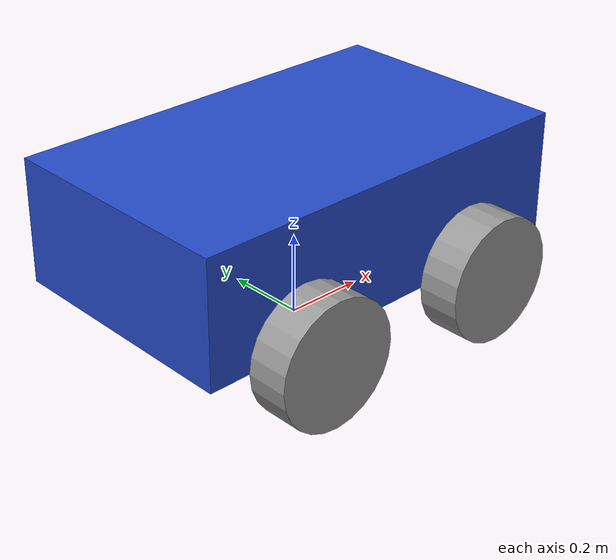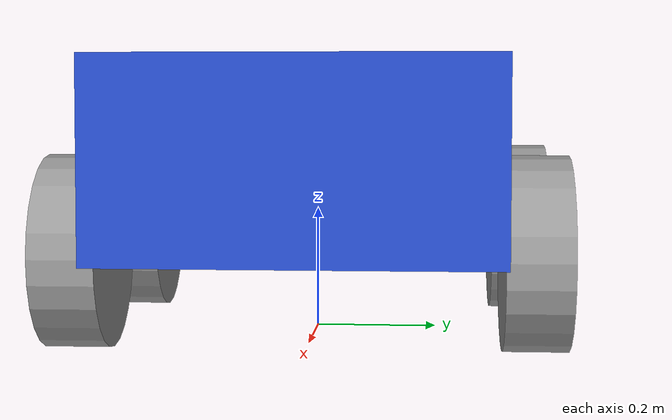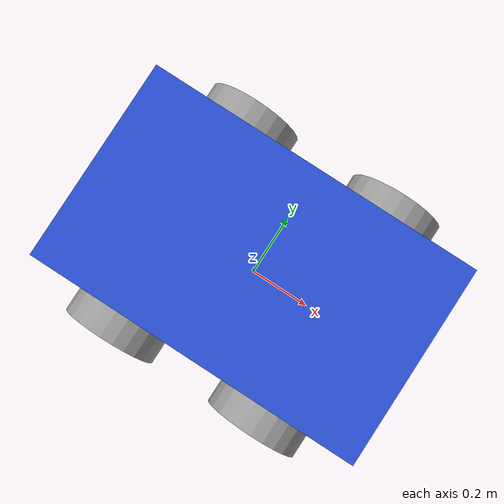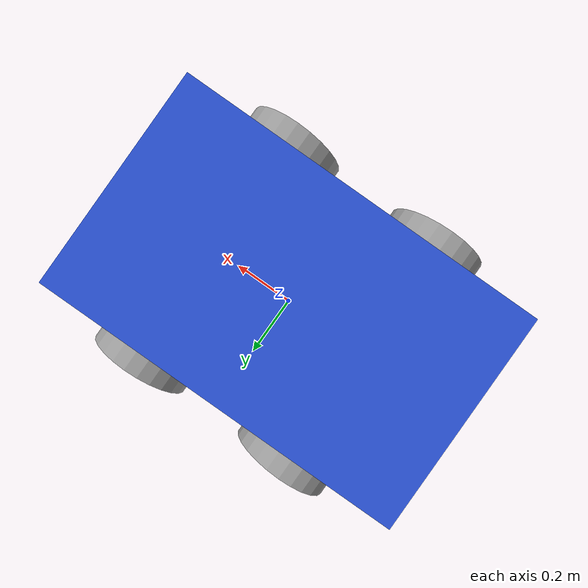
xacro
<?xml version="1.0"?>
<robot xmlns:xacro="http://www.ros.org/wiki/xacro">

    <xacro:property name="base_length" value="1" />
    <xacro:property name="base_width" value="0.6" />
    <xacro:property name="base_height" value="0.3" />
    <xacro:property name="wheel_radius" value="0.15" />
    <xacro:property name="wheel_length" value="0.1" />

    <link name="base_footprint" />

    <link name="base_link">
        <visual>
            <geometry>
                <box size="${base_length} ${base_width} ${base_height}" />
            </geometry>
            <origin xyz="0 0 ${base_height / 2.0}" rpy="0 0 0" />
            <material name="blue" />
        </visual>
        <collision>
            <geometry>
                <box size="${base_length} ${base_width} ${base_height}" />
            </geometry>
            <origin xyz="0 0 ${base_height / 2.0}" rpy="0 0 0" />
        </collision>
        <xacro:box_inertia m="5.0" l="${2*base_length}" w="${2*base_width}" h="${2*base_height}" xyz="0 0 ${base_height / 2.0}" rpy="0 0 0" />
    </link>

    <xacro:macro name="wheel_link" params="prefix">
        <link name="${prefix}_wheel_link">
            <visual>
                <geometry>
                    <cylinder radius="${wheel_radius}" length="${wheel_length}" />
                </geometry>
                <origin xyz="0 0 0" rpy="${pi / 2.0} 0 0" />
                <material name="grey" />
            </visual>
            <collision>
                <geometry>
                    <cylinder radius="${wheel_radius}" length="${wheel_length}" />
                </geometry>
                <origin xyz="0 0 0" rpy="${pi / 2.0} 0 0" />
            </collision>
            <xacro:cylinder_inertia m="1.0" r="${2*wheel_radius}" h="${2*wheel_length}" xyz="0 0 0" rpy="${pi / 2.0} 0 0"/>
        </link>
    </xacro:macro>

    <!-- Front wheels -->
    <xacro:wheel_link prefix="right" />
    <xacro:wheel_link prefix="left" />

    <!-- Back wheels -->
    <xacro:wheel_link prefix="right_back" />
    <xacro:wheel_link prefix="left_back" />

    <!-- Joints -->
    <joint name="base_joint" type="fixed">
        <parent link="base_footprint" />
        <child link="base_link" />
        <origin xyz="0 0 ${wheel_radius}" rpy="0 0 0"/>
    </joint>

    <joint name="base_right_wheel_joint" type="continuous">
        <parent link="base_link" />
        <child link="right_wheel_link" />
        <origin xyz="${-base_length / 4.0} ${-(base_width + wheel_length) / 2.0} 0" rpy="0 0 0" />
        <axis xyz="0 1 0" />
    </joint>

    <joint name="base_left_wheel_joint" type="continuous">
        <parent link="base_link" />
        <child link="left_wheel_link" />
        <origin xyz="${-base_length / 4.0} ${(base_width + wheel_length) / 2.0} 0" rpy="0 0 0" />
        <axis xyz="0 1 0" />
    </joint>

    <joint name="base_back_right_wheel_joint" type="continuous">
        <parent link="base_link" />
        <child link="right_back_wheel_link" />
        <origin xyz="${base_length / 4.0} ${-(base_width + wheel_length) / 2.0} 0" rpy="0 0 0" />
        <axis xyz="0 1 0" />
    </joint>

    <joint name="base_back_left_wheel_joint" type="continuous">
        <parent link="base_link" />
        <child link="left_back_wheel_link" />
        <origin xyz="${base_length / 4.0} ${(base_width + wheel_length) / 2.0} 0" rpy="0 0 0" />
        <axis xyz="0 1 0" />
    </joint>

</robot>
